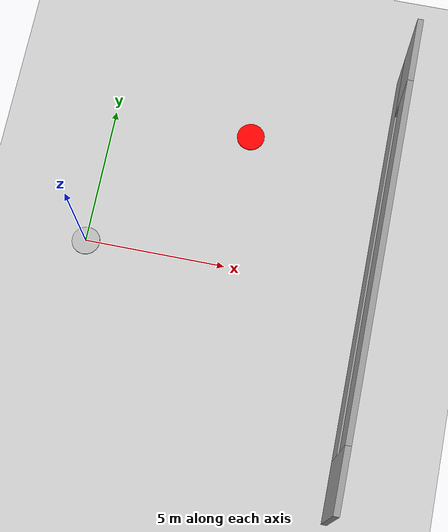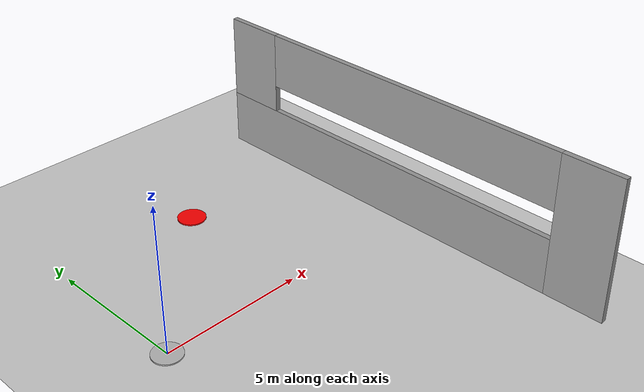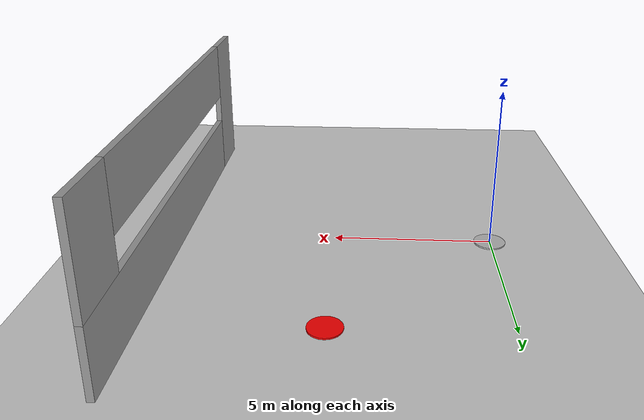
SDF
<?xml version="1.0" ?>
<sdf version="1.4">
    <world name="default">
        <include>
            <uri>model://sun</uri>
        </include>

        <include>
            <uri>model://ground_plane</uri>
        </include>

        <model name="start_point">
            <static>1</static>
            <link name="start_point_link">
                <visual name="start_point_visual">
                    <cast_shadows>0</cast_shadows>
                    <geometry>
                        <cylinder>
                            <length>0.05</length>
                            <radius>0.5</radius>
                        </cylinder>
                    </geometry>
                </visual>
            </link>
        </model>

        <model name="goal_point">
            <static>1</static>
            <pose>5 5 0 0 0 0</pose>
            <link name="goal_point_link">
                <visual name="goal_point_visual">
                    <cast_shadows>0</cast_shadows>
                    <geometry>
                        <cylinder>
                            <length>0.05</length>
                            <radius>0.5</radius>
                        </cylinder>
                    </geometry>
                    <material>
                        <ambient>1 0 0 1</ambient>
                        <diffuse>1 0 0 1</diffuse>
                        <specular>0.1 0.1 0.1 1</specular>
                        <emissive>0 0 0 0</emissive>
                    </material>
                </visual>
            </link>
        </model>

        <!-- Custom Code -->

        <model name='wall_window'>
            <pose frame=''>10 0 0 0 -0 0</pose>
            <link name='Wall_0'>
              <pose frame=''>0 0 0 0 -0 1.5708</pose>
              <visual name='Wall_0_Visual_0'>
                <pose frame=''>-7.05788 0 2.5 0 -0 0</pose>
                <geometry>
                  <box>
                    <size>2.08424 0.2 5</size>
                  </box>
                </geometry>
                <material>
                  <script>
                    <uri>file://media/materials/scripts/gazebo.material</uri>
                    <name>Gazebo/Grey</name>
                  </script>
                  <ambient>1 1 1 1</ambient>
                </material>
              </visual>
              <collision name='Wall_0_Collision_0'>
                <geometry>
                  <box>
                    <size>2.08424 0.2 5</size>
                  </box>
                </geometry>
                <pose frame=''>-7.05788 0 2.5 0 -0 0</pose>
              </collision>
              <visual name='Wall_0_Visual_1'>
                <pose frame=''>1.04212 0 1 0 -0 0</pose>
                <geometry>
                  <box>
                    <size>14.1158 0.2 2</size>
                  </box>
                </geometry>
                <material>
                  <script>
                    <uri>file://media/materials/scripts/gazebo.material</uri>
                    <name>Gazebo/Grey</name>
                  </script>
                  <ambient>1 1 1 1</ambient>
                </material>
              </visual>
              <collision name='Wall_0_Collision_1'>
                <geometry>
                  <box>
                    <size>14.1158 0.2 2</size>
                  </box>
                </geometry>
                <pose frame=''>1.04212 0 1 0 -0 0</pose>
              </collision>
              <visual name='Wall_0_Visual_2'>
                <pose frame=''>6.99662 0 3.5 0 -0 0</pose>
                <geometry>
                  <box>
                    <size>2.20676 0.2 3</size>
                  </box>
                </geometry>
                <material>
                  <script>
                    <uri>file://media/materials/scripts/gazebo.material</uri>
                    <name>Gazebo/Grey</name>
                  </script>
                  <ambient>1 1 1 1</ambient>
                </material>
              </visual>
              <collision name='Wall_0_Collision_2'>
                <geometry>
                  <box>
                    <size>2.20676 0.2 3</size>
                  </box>
                </geometry>
                <pose frame=''>6.99662 0 3.5 0 -0 0</pose>
              </collision>
              <visual name='Wall_0_Visual_3'>
                <pose frame=''>-0.061265 0 4 0 -0 0</pose>
                <geometry>
                  <box>
                    <size>11.909 0.2 2</size>
                  </box>
                </geometry>
                <material>
                  <script>
                    <uri>file://media/materials/scripts/gazebo.material</uri>
                    <name>Gazebo/Grey</name>
                  </script>
                  <ambient>1 1 1 1</ambient>
                </material>
              </visual>
              <collision name='Wall_0_Collision_3'>
                <geometry>
                  <box>
                    <size>11.909 0.2 2</size>
                  </box>
                </geometry>
                <pose frame=''>-0.061265 0 4 0 -0 0</pose>
              </collision>
            </link>
            <static>1</static>
          </model>

        <!-- Custom Code -->

        <physics type="ode">
            <max_step_size>0.001</max_step_size>
            <real_time_factor>1</real_time_factor>
            <real_time_update_rate>1000</real_time_update_rate>
            <gravity>0 0 -9.8</gravity>
        </physics>
        <scene>
            <ambient>0.4 0.4 0.4 1</ambient>
            <background>0.7 0.7 0.7 1</background>
            <shadows>1</shadows>
        </scene>
    </world>
</sdf>
